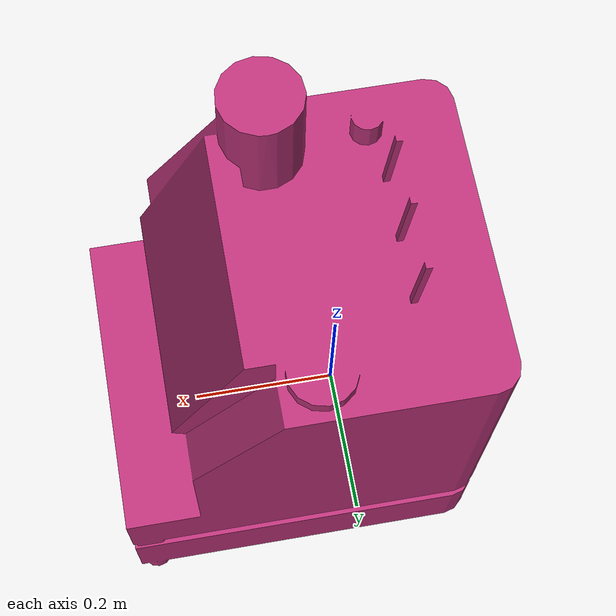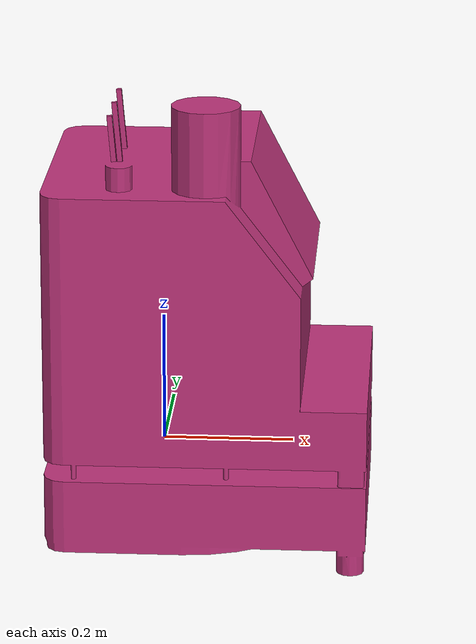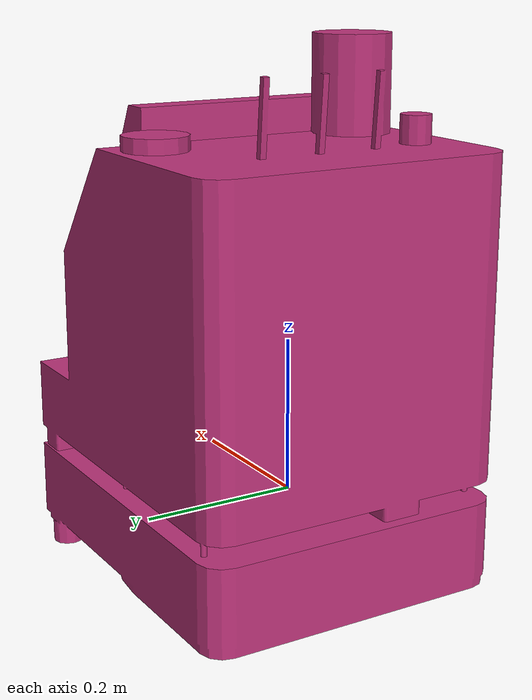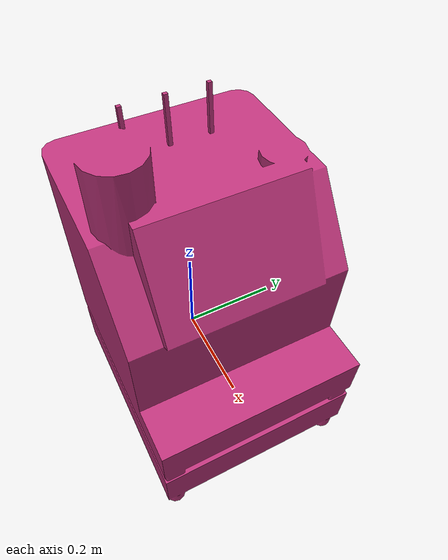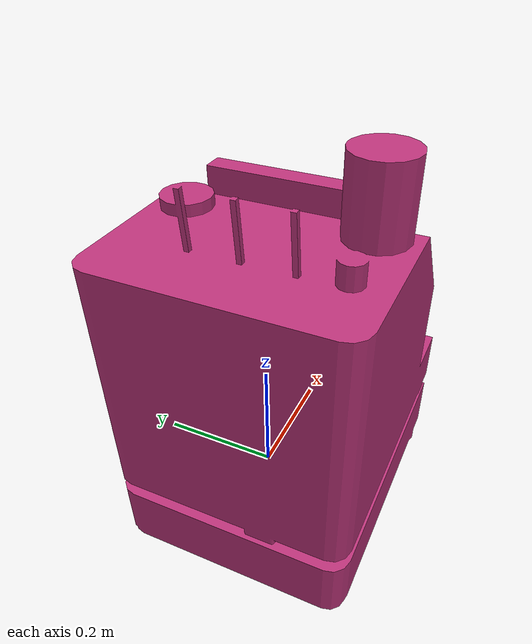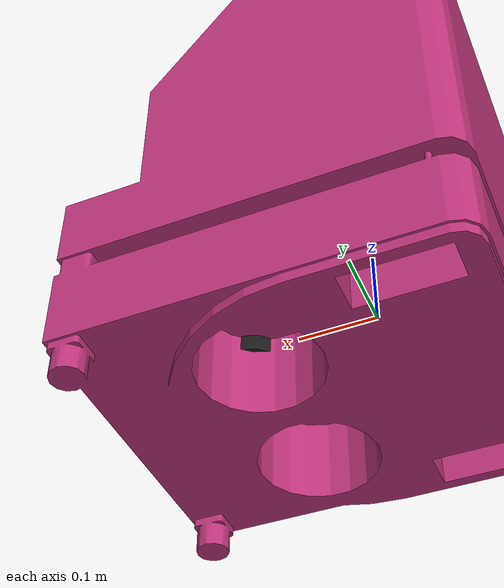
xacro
<?xml version="1.0" encoding="utf-8"?>
<robot xmlns:xacro="http://www.ros.org/wiki/xacro">

<xacro:property name="mesh_path" value="file://$(find frida_description)/urdf/meshes/TMR2025/" />
<xacro:property name="material_rgba" value="0.745 0.203 0.482 1" />
<xacro:property name="black_rgba" value="0.102 0.102 0.102 1" />
<xacro:property name="intel_rgba" value="0.776 0.757 0.737 1" />

<xacro:include filename="base.xacro"/>
<xacro:include filename="lidar.xacro"/>
<xacro:include filename="realsense.xacro"/>

</robot>

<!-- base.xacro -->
<robot xmlns:xacro="http://www.ros.org/wiki/xacro">

  <link name="base_link">
    <inertial>
      <origin xyz="0.031681 -0.0052694 0.10165" rpy="0 0 0" />
      <mass value="200.075" />
      <inertia ixx="0.44959" ixy="-0.005113" ixz="0.017804"
               iyy="0.46194" iyz="-0.00061969" izz="0.78515" />
    </inertial>
    <visual>
      <origin xyz="0 0 0" rpy="0 0 0" />
      <geometry>
        <mesh filename="${mesh_path}base_link.STL" />
      </geometry>
      <material name="">
        <color rgba="${material_rgba}" />
      </material>
    </visual>
    <collision>
      <origin xyz="0 0 0" rpy="0 0 0" />
      <geometry>
        <mesh filename="${mesh_path}base_link_collision.stl" />
      </geometry>
    </collision>
  </link>

  <link name="base_footprint" />
  <joint name = "base_footprint_joint" type="fixed">
    <parent link="base_footprint"/>
    <child link="base_link"/>
    <origin xyz="0 0 0" rpy="0 0 0 "/>
    <axis xyz="0 0 1"/>
  </joint>

  <link name="xarm_base" />
  <joint name="xarm_base_joint" type="fixed">
    <origin xyz="0.036105613000001 0 0.441000000000001" rpy="0 0 1.57" />
    <parent link="base_link" />
    <child link="xarm_base" />
    <axis xyz="0 0 1"/>
  </joint>

</robot>

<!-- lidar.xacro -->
<robot xmlns:xacro="http://www.ros.org/wiki/xacro">

<link name="laser">
    <inertial>
      <origin xyz="-1.3878E-17 3.3818E-34 -0.0125" rpy="0 0 0" />
      <mass value="0.096211" />
      <inertia ixx="3.4476E-05" ixy="-1.3255E-52" ixz="6.0099E-37"
               iyy="3.4476E-05" iyz="8.1342E-38" izz="5.8929E-05" />
    </inertial>
    <visual>
      <origin xyz="0 0 0" rpy="0 0 0" />
      <geometry>
        <mesh filename="${mesh_path}LIDAR.STL" />
      </geometry>
      <material name="">
        <color rgba="${black_rgba}" />
      </material>
    </visual>
    <collision>
      <origin xyz="0 0 0" rpy="0 0 0" />
      <geometry>
        <mesh filename="${mesh_path}LIDAR.STL" />
      </geometry>
    </collision>
  </link>
  <joint name="lidar" type="fixed">
    <origin xyz="0.16 0 0.002" rpy="0 0 3.14" />
    <parent link="base_link" />
    <child link="laser" />
    <axis xyz="0 0 1"/>
  </joint>

<link name="imu_base">
    <inertial>
      <origin xyz="-1.3878E-17 3.3818E-34 -0.0125" rpy="0 0 0" />
      <mass value="0.096211" />
      <inertia ixx="3.4476E-05" ixy="-1.3255E-52" ixz="6.0099E-37"
               iyy="3.4476E-05" iyz="8.1342E-38" izz="5.8929E-05" />
    </inertial>
    <visual>
      <origin xyz="0 0 0" rpy="0 0 0" />
      <material name="">
        <color rgba="${black_rgba}" />
      </material>
      <geometry>
        <box size="0.01 0.01 0.01"/>
      </geometry>
    </visual>
    <collision>
      <origin xyz="0 0 0" rpy="0 0 0" />
      <geometry>
        <box size="0.001 0.001 0.001"/>
      </geometry>
    </collision>
  </link>
  <joint name="imu_base_joint" type="fixed">
    <origin xyz="0.15026 0 0.002" rpy="3.1416 3.1416 1.57" />
    <parent link="base_link" />
    <child link="imu_base" />
    <axis xyz="0 0 1"/>
  </joint>

</robot>

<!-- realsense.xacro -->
<robot xmlns:xacro="http://www.ros.org/wiki/xacro">

 <link name="intel_realsense">
    <inertial>
      <origin xyz="-0.000276500325472787 -3.68172093455318E-07 -6.47494519674385E-05" rpy="0 0 0" />
      <mass value="0.048201" />
      <inertia ixx="2.7391E-05" ixy="-4.2599E-07" ixz="5.14365274506557E-08"
               iyy="3.3506E-06" iyz="-2.32499967543505E-08" izz="2.6652E-05" />
    </inertial>
    <visual>
      <origin xyz="0 0 0" rpy="0 0 0" />
      <geometry>
        <mesh filename="${mesh_path}intel_realsense.STL" />
      </geometry>
      <material name="">
        <color rgba="${intel_rgba}" />
      </material>
    </visual>
    <collision>
      <origin xyz="0 0 0" rpy="0 0 0" />
      <geometry>
        <mesh filename="${mesh_path}intel_realsense.STL" />
      </geometry>
    </collision>
  </link>
  <joint name="intelrealsense" type="fixed">
    <origin xyz="0.140953490988428 0 0.428947355746093" rpy="0 0 0" />
    <parent link="base_link" />
    <child link="intel_realsense" />
    <axis xyz="0 0 1"/>
  </joint>

</robot>
